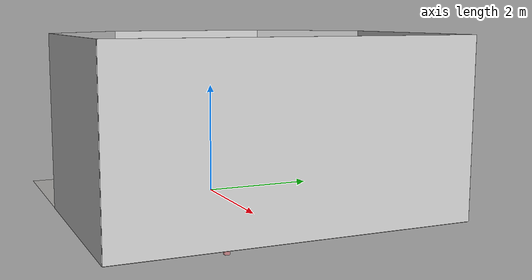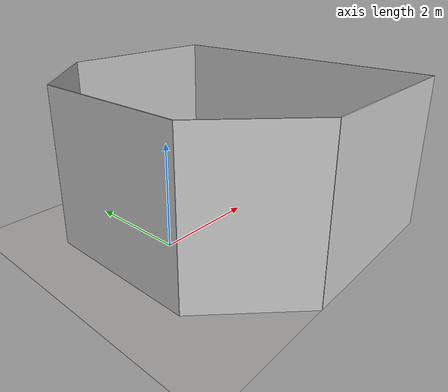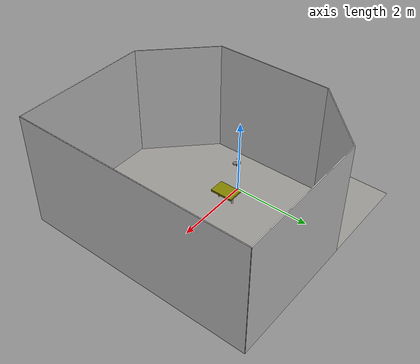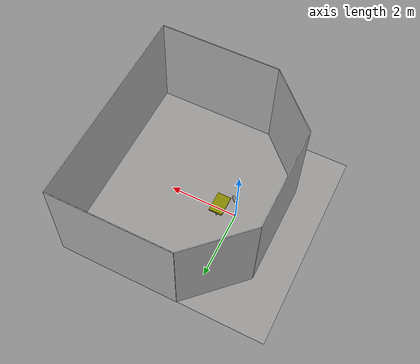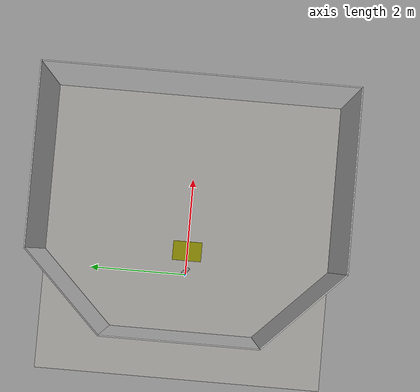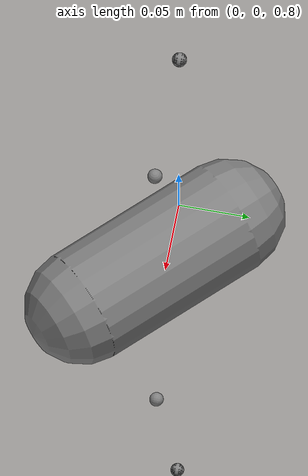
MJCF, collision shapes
<mujoco model="base">
  <compiler angle="radian" meshdir="!!! This spec should be loaded with asset dict. See simulator.mujoco.transforms.load_model_from_spec !!!/" texturedir="!!! This spec should be loaded with asset dict. See simulator.mujoco.transforms.load_model_from_spec !!!/"/>

  <option impratio="20" density="1.2" viscosity="2e-05" cone="elliptic"/>

  <size njmax="5000" nconmax="5000"/>

  <visual>
    <global azimuth="120" elevation="-20" offwidth="1920" offheight="1080"/>
    <map znear="0.001"/>
  </visual>

  <default>
    <default class="main_ph">
      <default class="panda_ph">
        <material shininess="0.25"/>
        <joint range="-2.8973 2.8973" armature="0.1" damping="1"/>
        <general ctrlrange="-2.8973 2.8973" forcerange="-100 100" biastype="affine" biasprm="0 -1"/>
        <default class="finger_ph">
          <joint type="slide" range="0 0.04"/>
        </default>
        <default class="visual_ph">
          <geom type="mesh" contype="0" conaffinity="0" group="2"/>
        </default>
        <default class="collision_ph">
          <geom type="mesh" contype="0" conaffinity="0" group="3"/>
          <default class="primitive_collision_ph">
            <geom type="box" solref="0.01" solimp="0.99 0.995 0.01"/>
            <default class="fingertip_pad_collision_1_ph">
              <geom size="0.011 0.0075 0.01"/>
            </default>
            <default class="fingertip_pad_collision_2_ph">
              <geom size="0.011 0.0044 0.0019"/>
            </default>
            <default class="fingertip_pad_collision_3_ph">
              <geom size="0.00875 0.0035 0.01175"/>
            </default>
            <default class="fingertip_pad_collision_4_ph">
              <geom size="0.00875 0.0076 0.00825" conaffinity="3"/>
            </default>
          </default>
        </default>
      </default>
    </default>
  </default>

  <custom>
    <text name="model_suffix" data="_ph"/>
    <text name="initial_ctrl" data="0.3314,-0.4919,-0.5844,-2.0910,-0.2424,1.7946,0.6114,0.0400"/>
    <text name="relative_assets_path" data="franka_table.assets.pkl"/>
  </custom>

  <asset>
    <texture type="skybox" builtin="gradient" rgb1="0.9 0.9 1" rgb2="0.2 0.3 0.4" width="256" height="1536"/>
    <texture type="2d" name="texplane" file="texplane.png"/>
    <texture type="cube" name="tex-ceramic" file="tex-ceramic.png"/>
    <texture type="cube" name="tex-steel-brushed" file="tex-steel-brushed.png"/>
    <texture type="2d" name="tex-light-gray-plaster" file="tex-light-gray-plaster.png"/>
    <texture type="cube" name="textable" builtin="flat" rgb1="0.5 0.5 0.5" width="512" height="3072"/>
    <material name="floorplane" texture="texplane" texuniform="true" texrepeat="2 2" specular="0" shininess="0" reflectance="0.01"/>
    <material name="table_ceramic" texture="tex-ceramic" specular="0.2" shininess="0"/>
    <material name="table_legs_metal" texture="tex-steel-brushed" shininess="0.8" reflectance="0.8"/>
    <material name="walls_mat" texture="tex-light-gray-plaster" texuniform="true" texrepeat="3 3" specular="0.1" shininess="0.1"/>
    <material name="table_mat" texture="textable"/>
    <material name="white_ph" class="panda_ph"/>
    <material name="off_white_ph" class="panda_ph" rgba="0.901961 0.921569 0.929412 1"/>
    <material name="black_ph" class="panda_ph" rgba="0.25 0.25 0.25 1"/>
    <material name="green_ph" class="panda_ph" rgba="0 1 0 1"/>
    <material name="light_blue_ph" class="panda_ph" rgba="0.039216 0.541176 0.780392 1"/>
    <mesh name="link0_c_ph" file="link0_c.stl"/>
    <mesh name="link1_c_ph" file="link1_c.stl"/>
    <mesh name="link2_c_ph" file="link2_c.stl"/>
    <mesh name="link3_c_ph" file="link3_c.stl"/>
    <mesh name="link4_c_ph" file="link4_c.stl"/>
    <mesh name="link5_c0_ph" file="link5_c0.obj"/>
    <mesh name="link5_c1_ph" file="link5_c1.obj"/>
    <mesh name="link5_c2_ph" file="link5_c2.obj"/>
    <mesh name="link6_c_ph" file="link6_c.stl"/>
    <mesh name="link7_c_ph" file="link7_c.stl"/>
    <mesh name="hand_c_ph" file="hand_c.stl"/>
    <mesh name="link0_0_ph" file="link0_0.obj"/>
    <mesh name="link0_1_ph" file="link0_1.obj"/>
    <mesh name="link0_2_ph" file="link0_2.obj"/>
    <mesh name="link0_3_ph" file="link0_3.obj"/>
    <mesh name="link0_4_ph" file="link0_4.obj"/>
    <mesh name="link0_5_ph" file="link0_5.obj"/>
    <mesh name="link0_7_ph" file="link0_7.obj"/>
    <mesh name="link0_8_ph" file="link0_8.obj"/>
    <mesh name="link0_9_ph" file="link0_9.obj"/>
    <mesh name="link0_10_ph" file="link0_10.obj"/>
    <mesh name="link0_11_ph" file="link0_11.obj"/>
    <mesh name="link1_ph" file="link1.obj"/>
    <mesh name="link2_ph" file="link2.obj"/>
    <mesh name="link3_0_ph" file="link3_0.obj"/>
    <mesh name="link3_1_ph" file="link3_1.obj"/>
    <mesh name="link3_2_ph" file="link3_2.obj"/>
    <mesh name="link3_3_ph" file="link3_3.obj"/>
    <mesh name="link4_0_ph" file="link4_0.obj"/>
    <mesh name="link4_1_ph" file="link4_1.obj"/>
    <mesh name="link4_2_ph" file="link4_2.obj"/>
    <mesh name="link4_3_ph" file="link4_3.obj"/>
    <mesh name="link5_0_ph" file="link5_0.obj"/>
    <mesh name="link5_1_ph" file="link5_1.obj"/>
    <mesh name="link5_2_ph" file="link5_2.obj"/>
    <mesh name="link6_0_ph" file="link6_0.obj"/>
    <mesh name="link6_1_ph" file="link6_1.obj"/>
    <mesh name="link6_2_ph" file="link6_2.obj"/>
    <mesh name="link6_3_ph" file="link6_3.obj"/>
    <mesh name="link6_4_ph" file="link6_4.obj"/>
    <mesh name="link6_5_ph" file="link6_5.obj"/>
    <mesh name="link6_6_ph" file="link6_6.obj"/>
    <mesh name="link6_7_ph" file="link6_7.obj"/>
    <mesh name="link6_8_ph" file="link6_8.obj"/>
    <mesh name="link6_9_ph" file="link6_9.obj"/>
    <mesh name="link6_10_ph" file="link6_10.obj"/>
    <mesh name="link6_11_ph" file="link6_11.obj"/>
    <mesh name="link6_12_ph" file="link6_12.obj"/>
    <mesh name="link6_13_ph" file="link6_13.obj"/>
    <mesh name="link6_14_ph" file="link6_14.obj"/>
    <mesh name="link6_15_ph" file="link6_15.obj"/>
    <mesh name="link6_16_ph" file="link6_16.obj"/>
    <mesh name="link7_0_ph" file="link7_0.obj"/>
    <mesh name="link7_1_ph" file="link7_1.obj"/>
    <mesh name="link7_2_ph" file="link7_2.obj"/>
    <mesh name="link7_3_ph" file="link7_3.obj"/>
    <mesh name="link7_4_ph" file="link7_4.obj"/>
    <mesh name="link7_5_ph" file="link7_5.obj"/>
    <mesh name="link7_6_ph" file="link7_6.obj"/>
    <mesh name="link7_7_ph" file="link7_7.obj"/>
    <mesh name="hand_0_ph" file="hand_0.obj"/>
    <mesh name="hand_1_ph" file="hand_1.obj"/>
    <mesh name="hand_2_ph" file="hand_2.obj"/>
    <mesh name="hand_3_ph" file="hand_3.obj"/>
    <mesh name="hand_4_ph" file="hand_4.obj"/>
    <mesh name="finger_0_ph" file="finger_0.obj"/>
    <mesh name="finger_1_ph" file="finger_1.obj"/>
  </asset>

  <worldbody>
    <geom name="floor" size="3 3 0.125" pos="0.8 0 0" type="plane" group="1" material="floorplane"/>
    <geom name="wall_leftcorner_visual" size="1.06 1.5 0.01" pos="-0.45 2.25 1.5" quat="0.653281 0.653281 0.270598 0.270598" type="box" contype="0" conaffinity="0" group="1" material="walls_mat"/>
    <geom name="wall_rightcorner_visual" size="1.06 1.5 0.01" pos="-0.45 -2.25 1.5" quat="0.653281 0.653281 -0.270598 -0.270598" type="box" contype="0" conaffinity="0" group="1" material="walls_mat"/>
    <geom name="wall_left_visual" size="1.75 1.5 0.01" pos="2.05 3 1.5" quat="0.707107 0.707107 0 0" type="box" contype="0" conaffinity="0" group="1" material="walls_mat"/>
    <geom name="wall_right_visual" size="1.75 1.5 0.01" pos="2.05 -3 1.5" quat="0.707107 -0.707107 0 0" type="box" contype="0" conaffinity="0" group="1" material="walls_mat"/>
    <geom name="wall_rear_visual" size="1.5 1.5 0.01" pos="-1.2 0 1.5" quat="0.5 0.5 0.5 0.5" type="box" contype="0" conaffinity="0" group="1" material="walls_mat"/>
    <geom name="wall_front_visual" size="3 1.5 0.01" pos="3.8 0 1.5" quat="0.5 0.5 -0.5 -0.5" type="box" contype="0" conaffinity="0" group="1" material="walls_mat"/>
    <site name="origin" pos="0 0 0"/>
    <camera name="frontview" pos="2.4 0 1.45" quat="0.560842 0.430646 0.430646 0.560842"/>
    <camera name="birdview" pos="0.6 0 3" quat="0.707107 0 0 0.707107"/>
    <camera name="agentview" pos="1.3 0 1.35" quat="0.653098 0.271041 0.271041 0.653098"/>
    <camera name="sideview" pos="0.743482 1.27612 1.48796" quat="0.00990507 0.00687796 0.591223 0.806418"/>
    <light pos="1.8 3 1.5" dir="-0.707107 -0.707107 0" castshadow="false"/>
    <body name="table" pos="0.5 0 0.275">
      <geom name="table_collision" size="0.2 0.3 0.025" type="box" rgba="0.5 0.5 0 1"/>
      <geom name="table_visual" size="0.2 0.3 0.025" type="box" contype="0" conaffinity="0" group="1" material="table_ceramic"/>
      <geom name="table_leg1_visual" size="0.025 0.1375" pos="0 0.2 -0.1375" type="cylinder" contype="0" conaffinity="0" group="1" material="table_legs_metal"/>
      <geom name="table_leg2_visual" size="0.025 0.1375" pos="0 0.2 -0.1375" type="cylinder" contype="0" conaffinity="0" group="1" material="table_legs_metal"/>
      <geom name="table_leg3_visual" size="0.025 0.1375" pos="0 -0.2 -0.1375" type="cylinder" contype="0" conaffinity="0" group="1" material="table_legs_metal"/>
      <geom name="table_leg4_visual" size="0.025 0.1375" pos="0 -0.2 -0.1375" type="cylinder" contype="0" conaffinity="0" group="1" material="table_legs_metal"/>
      <site name="table_top" pos="0 0 0.025" size="0.001" rgba="0 0 0 0"/>
    </body>
    <body name="left_eef_target" pos="0.8 0 -1" mocap="true">
      <geom name="left_eef_target_box" size="0.05 0.05 0.05" type="box" contype="0" conaffinity="0" group="2" rgba="0.898 0.42 0.435 0.5"/>
      <geom name="left_eef_target_sphere" size="0.01" contype="0" conaffinity="0" group="2" rgba="0.898 0.42 0.435 0.8"/>
    </body>
    <body name="right_eef_target" pos="0.8 0 -1" mocap="true">
      <geom name="right_eef_target_box" size="0.05 0.05 0.05" type="box" contype="0" conaffinity="0" group="2" rgba="0.208 0.314 0.439 0.5"/>
      <geom name="right_eef_target_sphere" size="0.01" contype="0" conaffinity="0" group="2" rgba="0.208 0.314 0.439 0.8"/>
    </body>
    <body name="world_ph">
      <light name="top_ph" pos="0 0 2" dir="0 0 -1" mode="trackcom"/>
      <body name="link0_ph" childclass="panda_ph">
        <inertial pos="-0.041018 -0.00014 0.049974" quat="0.00630474 0.751245 0.00741774 0.659952" mass="0.629769" diaginertia="0.00430465 0.00387984 0.00313051"/>
        <geom class="visual_ph" material="off_white_ph" mesh="link0_0_ph"/>
        <geom class="visual_ph" material="black_ph" mesh="link0_1_ph"/>
        <geom class="visual_ph" material="off_white_ph" mesh="link0_2_ph"/>
        <geom class="visual_ph" material="black_ph" mesh="link0_3_ph"/>
        <geom class="visual_ph" material="off_white_ph" mesh="link0_4_ph"/>
        <geom class="visual_ph" material="black_ph" mesh="link0_5_ph"/>
        <geom class="visual_ph" material="white_ph" mesh="link0_7_ph"/>
        <geom class="visual_ph" material="white_ph" mesh="link0_8_ph"/>
        <geom class="visual_ph" material="black_ph" mesh="link0_9_ph"/>
        <geom class="visual_ph" material="off_white_ph" mesh="link0_10_ph"/>
        <geom class="visual_ph" material="white_ph" mesh="link0_11_ph"/>
        <geom class="collision_ph" mesh="link0_c_ph"/>
        <body name="link1_ph" pos="0 0 0.333">
          <inertial pos="0.003875 0.002081 -0.04762" quat="0.711549 0.00634377 -0.0131124 0.702485" mass="4.97068" diaginertia="0.707137 0.703435 0.00852456"/>
          <joint name="joint1_ph" pos="0 0 0" axis="0 0 1" damping="40"/>
          <geom class="visual_ph" material="white_ph" mesh="link1_ph"/>
          <geom class="collision_ph" mesh="link1_c_ph"/>
          <site name="site_joint1_ph" pos="0 0 0"/>
          <body name="link2_ph" quat="0.707107 -0.707107 0 0">
            <inertial pos="-0.003141 -0.02872 0.003495" quat="-0.168175 0.828366 -0.122878 0.520027" mass="0.646926" diaginertia="0.0310326 0.0283001 0.00273425"/>
            <joint name="joint2_ph" pos="0 0 0" axis="0 0 1" range="-1.7628 1.7628" damping="40"/>
            <geom class="visual_ph" material="white_ph" mesh="link2_ph"/>
            <geom class="collision_ph" mesh="link2_c_ph"/>
            <site name="site_joint2_ph" pos="0 0 0"/>
            <body name="link3_ph" pos="0 -0.316 0" quat="0.707107 0.707107 0 0">
              <inertial pos="0.027518 0.039252 -0.066502" quat="0.662769 -0.00678331 0.252053 0.705096" mass="3.2286" diaginertia="0.0415014 0.0414793 0.00124635"/>
              <joint name="joint3_ph" pos="0 0 0" axis="0 0 1" damping="40"/>
              <geom class="visual_ph" material="white_ph" mesh="link3_0_ph"/>
              <geom class="visual_ph" material="white_ph" mesh="link3_1_ph"/>
              <geom class="visual_ph" material="white_ph" mesh="link3_2_ph"/>
              <geom class="visual_ph" material="black_ph" mesh="link3_3_ph"/>
              <geom class="collision_ph" mesh="link3_c_ph"/>
              <site name="site_joint3_ph" pos="0 0 0"/>
              <body name="link4_ph" pos="0.0825 0 0" quat="0.707107 0.707107 0 0">
                <inertial pos="-0.05317 0.104419 0.027454" quat="0.65058 0.529822 -0.0962034 0.535518" mass="3.5879" diaginertia="0.0349596 0.0281483 0.0106201"/>
                <joint name="joint4_ph" pos="0 0 0" axis="0 0 1" range="-3.0718 -0.0698" damping="40"/>
                <geom class="visual_ph" material="white_ph" mesh="link4_0_ph"/>
                <geom class="visual_ph" material="white_ph" mesh="link4_1_ph"/>
                <geom class="visual_ph" material="black_ph" mesh="link4_2_ph"/>
                <geom class="visual_ph" material="white_ph" mesh="link4_3_ph"/>
                <geom class="collision_ph" mesh="link4_c_ph"/>
                <site name="site_joint4_ph" pos="0 0 0"/>
                <body name="link5_ph" pos="-0.0825 0.384 0" quat="0.707107 -0.707107 0 0">
                  <inertial pos="-0.011953 0.041065 -0.038437" quat="0.987313 -0.0121954 0.0719187 -0.141037" mass="1.22595" diaginertia="0.0367625 0.0288531 0.00803437"/>
                  <joint name="joint5_ph" pos="0 0 0" axis="0 0 1" damping="2"/>
                  <geom class="visual_ph" material="black_ph" mesh="link5_0_ph"/>
                  <geom class="visual_ph" material="white_ph" mesh="link5_1_ph"/>
                  <geom class="visual_ph" material="white_ph" mesh="link5_2_ph"/>
                  <geom class="collision_ph" mesh="link5_c0_ph"/>
                  <geom class="collision_ph" mesh="link5_c1_ph"/>
                  <geom class="collision_ph" mesh="link5_c2_ph"/>
                  <site name="site_joint5_ph" pos="0 0 0"/>
                  <body name="link6_ph" quat="0.707107 0.707107 0 0">
                    <inertial pos="0.060149 -0.014117 -0.010517" quat="0.101075 0.59332 0.0287227 0.798079" mass="1.66656" diaginertia="0.00584276 0.00431037 0.00159787"/>
                    <joint name="joint6_ph" pos="0 0 0" axis="0 0 1" range="-0.0175 3.7525" damping="2"/>
                    <geom class="visual_ph" material="off_white_ph" mesh="link6_0_ph"/>
                    <geom class="visual_ph" material="white_ph" mesh="link6_1_ph"/>
                    <geom class="visual_ph" material="black_ph" mesh="link6_2_ph"/>
                    <geom class="visual_ph" material="white_ph" mesh="link6_3_ph"/>
                    <geom class="visual_ph" material="white_ph" mesh="link6_4_ph"/>
                    <geom class="visual_ph" material="white_ph" mesh="link6_5_ph"/>
                    <geom class="visual_ph" material="white_ph" mesh="link6_6_ph"/>
                    <geom class="visual_ph" material="light_blue_ph" mesh="link6_7_ph"/>
                    <geom class="visual_ph" material="light_blue_ph" mesh="link6_8_ph"/>
                    <geom class="visual_ph" material="black_ph" mesh="link6_9_ph"/>
                    <geom class="visual_ph" material="black_ph" mesh="link6_10_ph"/>
                    <geom class="visual_ph" material="white_ph" mesh="link6_11_ph"/>
                    <geom class="visual_ph" material="green_ph" mesh="link6_12_ph"/>
                    <geom class="visual_ph" material="white_ph" mesh="link6_13_ph"/>
                    <geom class="visual_ph" material="black_ph" mesh="link6_14_ph"/>
                    <geom class="visual_ph" material="black_ph" mesh="link6_15_ph"/>
                    <geom class="visual_ph" material="white_ph" mesh="link6_16_ph"/>
                    <geom class="collision_ph" mesh="link6_c_ph"/>
                    <site name="site_joint6_ph" pos="0 0 0"/>
                    <body name="link7_ph" pos="0.088 0 0" quat="0.707107 0.707107 0 0">
                      <inertial pos="0.010517 -0.004252 0.061597" quat="0.992939 -0.0762041 0.0733595 -0.0537067" mass="0.735522" diaginertia="0.0127345 0.0101055 0.00451803"/>
                      <joint name="joint7_ph" pos="0 0 0" axis="0 0 1" damping="2"/>
                      <geom class="visual_ph" material="white_ph" mesh="link7_0_ph"/>
                      <geom class="visual_ph" material="black_ph" mesh="link7_1_ph"/>
                      <geom class="visual_ph" material="black_ph" mesh="link7_2_ph"/>
                      <geom class="visual_ph" material="black_ph" mesh="link7_3_ph"/>
                      <geom class="visual_ph" material="black_ph" mesh="link7_4_ph"/>
                      <geom class="visual_ph" material="black_ph" mesh="link7_5_ph"/>
                      <geom class="visual_ph" material="black_ph" mesh="link7_6_ph"/>
                      <geom class="visual_ph" material="white_ph" mesh="link7_7_ph"/>
                      <geom class="collision_ph" mesh="link7_c_ph"/>
                      <site name="site_joint7_ph" pos="0 0 0"/>
                      <body name="hand_ph" pos="0 0 0.107" quat="0.92388 0 0 -0.382683">
                        <inertial pos="-0.01 0 0.03" mass="0.73" diaginertia="0.001 0.0025 0.0017"/>
                        <geom class="visual_ph" material="off_white_ph" mesh="hand_0_ph"/>
                        <geom class="visual_ph" material="black_ph" mesh="hand_1_ph"/>
                        <geom class="visual_ph" material="black_ph" mesh="hand_2_ph"/>
                        <geom class="visual_ph" material="white_ph" mesh="hand_3_ph"/>
                        <geom class="visual_ph" material="off_white_ph" mesh="hand_4_ph"/>
                        <geom class="collision_ph" mesh="hand_c_ph"/>
                        <geom name="hand_capsule_ph" class="collision_ph" size="0.04 0.06" pos="0 0 0.03" quat="0.707107 0.707107 0 0" type="capsule" conaffinity="1"/>
                        <site name="end_effector_ph" pos="0 0 0.0584" size="0.01" rgba="1 0 0 1"/>
                        <site name="gripper_ph" pos="0 0 0.1"/>
                        <camera name="handcam_left_ph" pos="0.05 -0.05 0.01" quat="0 0.707105 0.707108 0" fovy="105"/>
                        <camera name="handcam_front_ph" pos="0.05 0 0.01" quat="0 0.707105 0.707108 0" fovy="105"/>
                        <camera name="handcam_back_ph" pos="-0.05 0 0.01" quat="0 0.707105 0.707108 0" fovy="105"/>
                        <camera name="handcam_right_ph" pos="0.05 0.05 0.01" quat="0 0.707105 0.707108 0" fovy="105"/>
                        <camera name="wrist_cam_ph" pos="-0.05 0.03 0.015" xyaxes="0 -1 0 -1 0 0.2" fovy="90"/>
                        <body name="left_finger_ph" pos="0 0 0.0584">
                          <inertial pos="0 0 0" mass="0.015" diaginertia="2.375e-06 2.375e-06 7.5e-07"/>
                          <joint name="finger_joint1_ph" class="finger_ph" pos="0 0 0" axis="0 1 0" damping="10"/>
                          <geom class="visual_ph" material="off_white_ph" mesh="finger_0_ph"/>
                          <geom class="visual_ph" material="black_ph" mesh="finger_1_ph"/>
                          <geom class="collision_ph" mesh="finger_0_ph"/>
                          <geom class="fingertip_pad_collision_1_ph" pos="0 0.0185 0.011"/>
                          <geom class="fingertip_pad_collision_2_ph" pos="0 0.0068 0.0022"/>
                          <geom class="fingertip_pad_collision_3_ph" pos="0 0.0159 0.02835" quat="0.970143 0.242536 0 0"/>
                          <geom name="left_finger_pad_ph" class="fingertip_pad_collision_4_ph" pos="0 0.00758 0.04525"/>
                        </body>
                        <body name="right_finger_ph" pos="0 0 0.0584" quat="0 0 0 1">
                          <inertial pos="0 0 0" mass="0.015" diaginertia="2.375e-06 2.375e-06 7.5e-07"/>
                          <joint name="finger_joint2_ph" class="finger_ph" pos="0 0 0" axis="0 1 0" damping="10"/>
                          <geom class="visual_ph" material="off_white_ph" mesh="finger_0_ph"/>
                          <geom class="visual_ph" material="black_ph" mesh="finger_1_ph"/>
                          <geom class="collision_ph" mesh="finger_0_ph"/>
                          <geom class="fingertip_pad_collision_1_ph" pos="0 0.0185 0.011"/>
                          <geom class="fingertip_pad_collision_2_ph" pos="0 0.0068 0.0022"/>
                          <geom class="fingertip_pad_collision_3_ph" pos="0 0.0159 0.02835" quat="0.970143 0.242536 0 0"/>
                          <geom name="right_finger_pad_ph" class="fingertip_pad_collision_4_ph" pos="0 0.00758 0.04525"/>
                        </body>
                      </body>
                    </body>
                  </body>
                </body>
              </body>
            </body>
          </body>
        </body>
      </body>
    </body>
  </worldbody>

  <equality>
    <joint joint1="finger_joint1_ph" joint2="finger_joint2_ph" polycoef="0 1 0 0 0" solref="0.005" solimp="0.95 0.99"/>
  </equality>

  <actuator>
    <general name="actuator1_ph" class="panda_ph" joint="joint1_ph" gainprm="1000" biasprm="0 -1000 -20"/>
    <general name="actuator2_ph" class="panda_ph" joint="joint2_ph" ctrlrange="-1.7628 1.7628" gainprm="1000" biasprm="0 -1000 -20"/>
    <general name="actuator3_ph" class="panda_ph" joint="joint3_ph" gainprm="750" biasprm="0 -750 -4"/>
    <general name="actuator4_ph" class="panda_ph" joint="joint4_ph" ctrlrange="-3.0718 -0.0698" gainprm="750" biasprm="0 -750 -4"/>
    <general name="actuator5_ph" class="panda_ph" joint="joint5_ph" forcerange="-12 12" gainprm="300" biasprm="0 -300 -2"/>
    <general name="actuator6_ph" class="panda_ph" joint="joint6_ph" ctrlrange="-0.0175 3.7525" forcerange="-12 12" gainprm="300" biasprm="0 -300 -2"/>
    <general name="actuator7_ph" class="panda_ph" joint="joint7_ph" forcerange="-12 12" gainprm="300" biasprm="0 -300 -2"/>
    <general name="actuator8_ph" class="panda_ph" joint="finger_joint1_ph" ctrlrange="0 0.04" forcerange="-200 200" gainprm="350" biasprm="0 -350 -10"/>
  </actuator>

  <sensor>
    <torque site="site_joint1_ph" name="torque1_ph"/>
    <torque site="site_joint2_ph" name="torque2_ph"/>
    <torque site="site_joint3_ph" name="torque3_ph"/>
    <torque site="site_joint4_ph" name="torque4_ph"/>
    <torque site="site_joint5_ph" name="torque5_ph"/>
    <torque site="site_joint6_ph" name="torque6_ph"/>
    <torque site="site_joint7_ph" name="torque7_ph"/>
  </sensor>
</mujoco>
